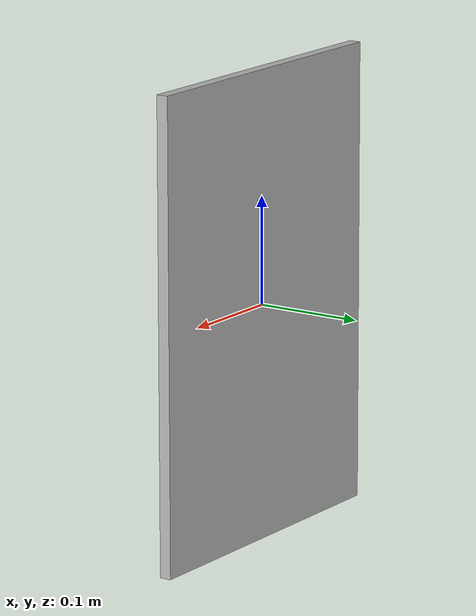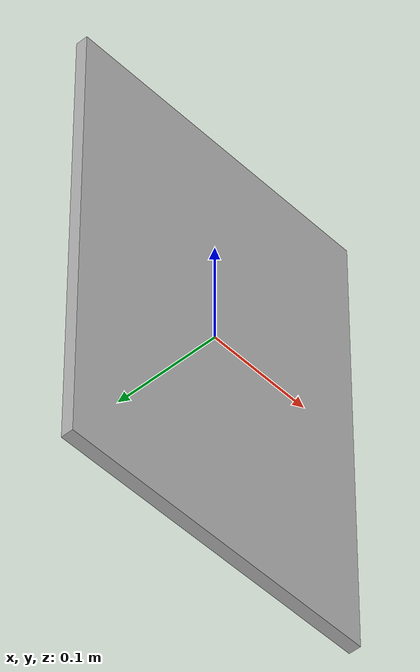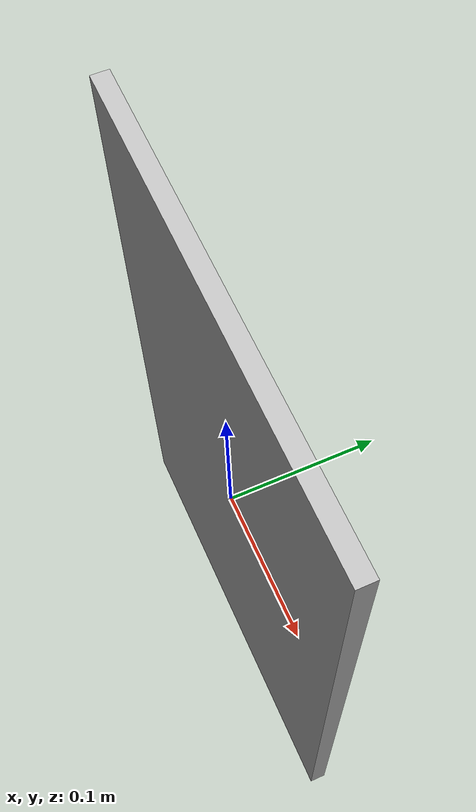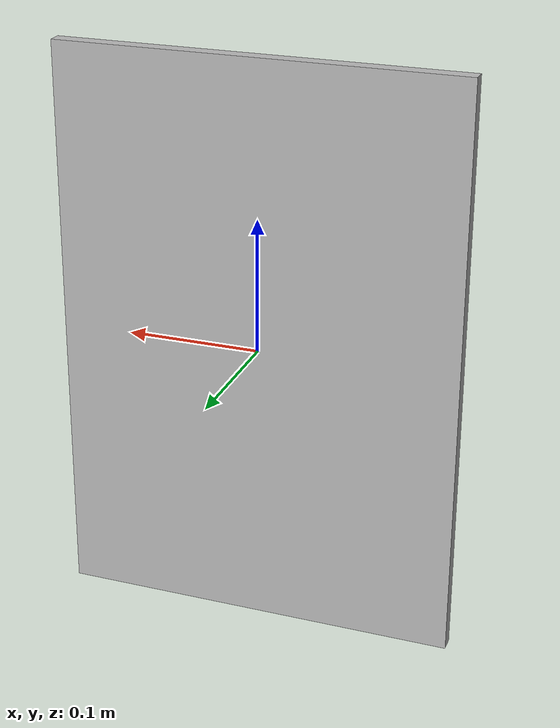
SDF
<?xml version="1.0" ?>
<sdf version="1.5">
  <model name="Horse1">
    <static>true</static>
    <link name="link">
      <pose>0 0 0 0 0 0</pose>
      <collision name="collision">
        <geometry>
          <box>
            <size>.301 0.011 .432</size>
          </box>
        </geometry>
      </collision>
      <visual name="visual">
        <cast_shadows>false</cast_shadows>
        <geometry>
          <box>
            <size>.301 0.011 .432</size>
          </box>
        </geometry>
        <material>
          <script>
            <uri>model://Horse1/materials/scripts</uri>
            <uri>model://Horse1/materials/textures</uri>
            <name>vrc/Horse1</name>
          </script>
        </material>
      </visual>
    </link>
  </model>
</sdf>
